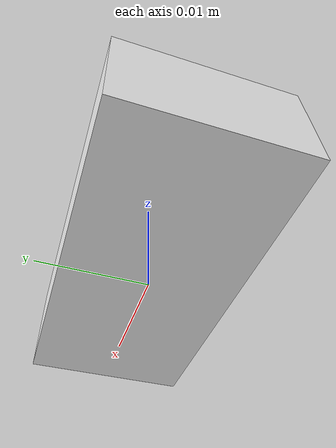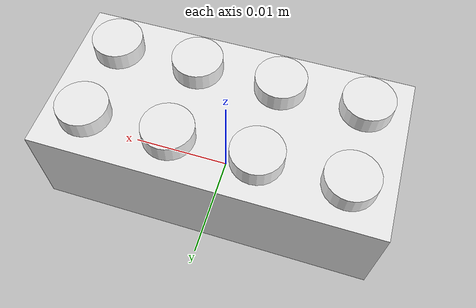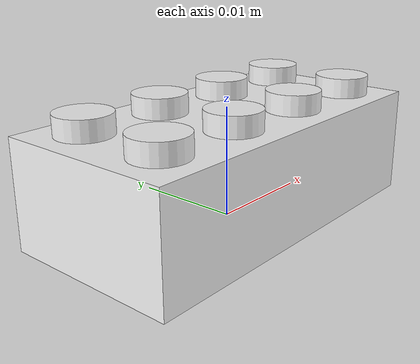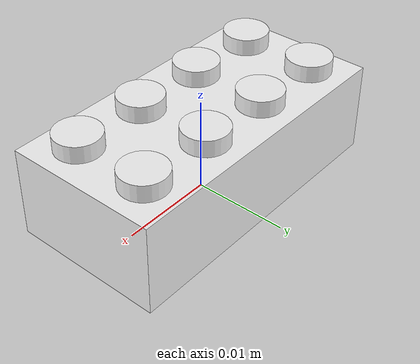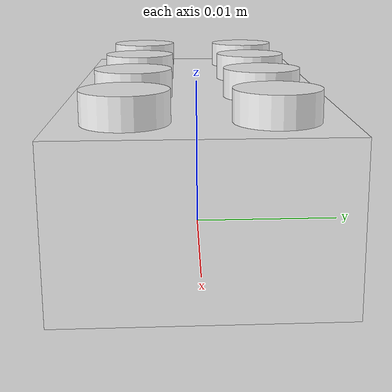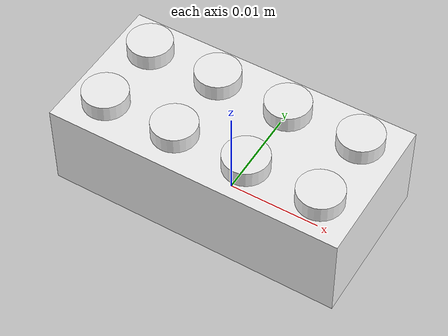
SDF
<?xml version="1.0"?>
<sdf version="1.9">
  <model name="lego_2x4_white">
    <static>false</static>
    <link name="link">
      <inertial>
        <mass>0.016000</mass>
        <inertia>
          <ixx>0.000001</ixx><ixy>0</ixy><ixz>0</ixz>
          <iyy>0.000001</iyy><iyz>0</iyz>
          <izz>0.000001</izz>
        </inertia>
      </inertial>
      <visual name="body">
        <pose>0 0 0.004800 0 0 0</pose>
        <geometry><box><size>0.032000 0.016000 0.009600</size></box></geometry>
        <material>
          <ambient>0.95 0.95 0.95 1</ambient>
          <diffuse>0.95 0.95 0.95 1</diffuse>
          <specular>0.2 0.2 0.2 1</specular>
        </material>
      </visual>
      <collision name="body_col">
        <pose>0 0 0.004800 0 0 0</pose>
        <geometry><box><size>0.032000 0.016000 0.009600</size></box></geometry>
        <surface><friction><ode><mu>0.8</mu><mu2>0.8</mu2></ode></friction></surface>
      </collision>
      <visual name="stud_0_0">
        <pose>-0.012000 -0.004000 0.010500 0 0 0</pose>
        <geometry><cylinder><radius>0.0024</radius><length>0.0018</length></cylinder></geometry>
        <material>
          <ambient>0.95 0.95 0.95 1</ambient>
          <diffuse>0.95 0.95 0.95 1</diffuse>
          <specular>0.2 0.2 0.2 1</specular>
        </material>
      </visual>
      <collision name="stud_col_0_0">
        <pose>-0.012000 -0.004000 0.010500 0 0 0</pose>
        <geometry><cylinder><radius>0.0024</radius><length>0.0018</length></cylinder></geometry>
      </collision>
      <visual name="stud_0_1">
        <pose>-0.012000 0.004000 0.010500 0 0 0</pose>
        <geometry><cylinder><radius>0.0024</radius><length>0.0018</length></cylinder></geometry>
        <material>
          <ambient>0.95 0.95 0.95 1</ambient>
          <diffuse>0.95 0.95 0.95 1</diffuse>
          <specular>0.2 0.2 0.2 1</specular>
        </material>
      </visual>
      <collision name="stud_col_0_1">
        <pose>-0.012000 0.004000 0.010500 0 0 0</pose>
        <geometry><cylinder><radius>0.0024</radius><length>0.0018</length></cylinder></geometry>
      </collision>
      <visual name="stud_1_0">
        <pose>-0.004000 -0.004000 0.010500 0 0 0</pose>
        <geometry><cylinder><radius>0.0024</radius><length>0.0018</length></cylinder></geometry>
        <material>
          <ambient>0.95 0.95 0.95 1</ambient>
          <diffuse>0.95 0.95 0.95 1</diffuse>
          <specular>0.2 0.2 0.2 1</specular>
        </material>
      </visual>
      <collision name="stud_col_1_0">
        <pose>-0.004000 -0.004000 0.010500 0 0 0</pose>
        <geometry><cylinder><radius>0.0024</radius><length>0.0018</length></cylinder></geometry>
      </collision>
      <visual name="stud_1_1">
        <pose>-0.004000 0.004000 0.010500 0 0 0</pose>
        <geometry><cylinder><radius>0.0024</radius><length>0.0018</length></cylinder></geometry>
        <material>
          <ambient>0.95 0.95 0.95 1</ambient>
          <diffuse>0.95 0.95 0.95 1</diffuse>
          <specular>0.2 0.2 0.2 1</specular>
        </material>
      </visual>
      <collision name="stud_col_1_1">
        <pose>-0.004000 0.004000 0.010500 0 0 0</pose>
        <geometry><cylinder><radius>0.0024</radius><length>0.0018</length></cylinder></geometry>
      </collision>
      <visual name="stud_2_0">
        <pose>0.004000 -0.004000 0.010500 0 0 0</pose>
        <geometry><cylinder><radius>0.0024</radius><length>0.0018</length></cylinder></geometry>
        <material>
          <ambient>0.95 0.95 0.95 1</ambient>
          <diffuse>0.95 0.95 0.95 1</diffuse>
          <specular>0.2 0.2 0.2 1</specular>
        </material>
      </visual>
      <collision name="stud_col_2_0">
        <pose>0.004000 -0.004000 0.010500 0 0 0</pose>
        <geometry><cylinder><radius>0.0024</radius><length>0.0018</length></cylinder></geometry>
      </collision>
      <visual name="stud_2_1">
        <pose>0.004000 0.004000 0.010500 0 0 0</pose>
        <geometry><cylinder><radius>0.0024</radius><length>0.0018</length></cylinder></geometry>
        <material>
          <ambient>0.95 0.95 0.95 1</ambient>
          <diffuse>0.95 0.95 0.95 1</diffuse>
          <specular>0.2 0.2 0.2 1</specular>
        </material>
      </visual>
      <collision name="stud_col_2_1">
        <pose>0.004000 0.004000 0.010500 0 0 0</pose>
        <geometry><cylinder><radius>0.0024</radius><length>0.0018</length></cylinder></geometry>
      </collision>
      <visual name="stud_3_0">
        <pose>0.012000 -0.004000 0.010500 0 0 0</pose>
        <geometry><cylinder><radius>0.0024</radius><length>0.0018</length></cylinder></geometry>
        <material>
          <ambient>0.95 0.95 0.95 1</ambient>
          <diffuse>0.95 0.95 0.95 1</diffuse>
          <specular>0.2 0.2 0.2 1</specular>
        </material>
      </visual>
      <collision name="stud_col_3_0">
        <pose>0.012000 -0.004000 0.010500 0 0 0</pose>
        <geometry><cylinder><radius>0.0024</radius><length>0.0018</length></cylinder></geometry>
      </collision>
      <visual name="stud_3_1">
        <pose>0.012000 0.004000 0.010500 0 0 0</pose>
        <geometry><cylinder><radius>0.0024</radius><length>0.0018</length></cylinder></geometry>
        <material>
          <ambient>0.95 0.95 0.95 1</ambient>
          <diffuse>0.95 0.95 0.95 1</diffuse>
          <specular>0.2 0.2 0.2 1</specular>
        </material>
      </visual>
      <collision name="stud_col_3_1">
        <pose>0.012000 0.004000 0.010500 0 0 0</pose>
        <geometry><cylinder><radius>0.0024</radius><length>0.0018</length></cylinder></geometry>
      </collision>
    </link>
  </model>
</sdf>
